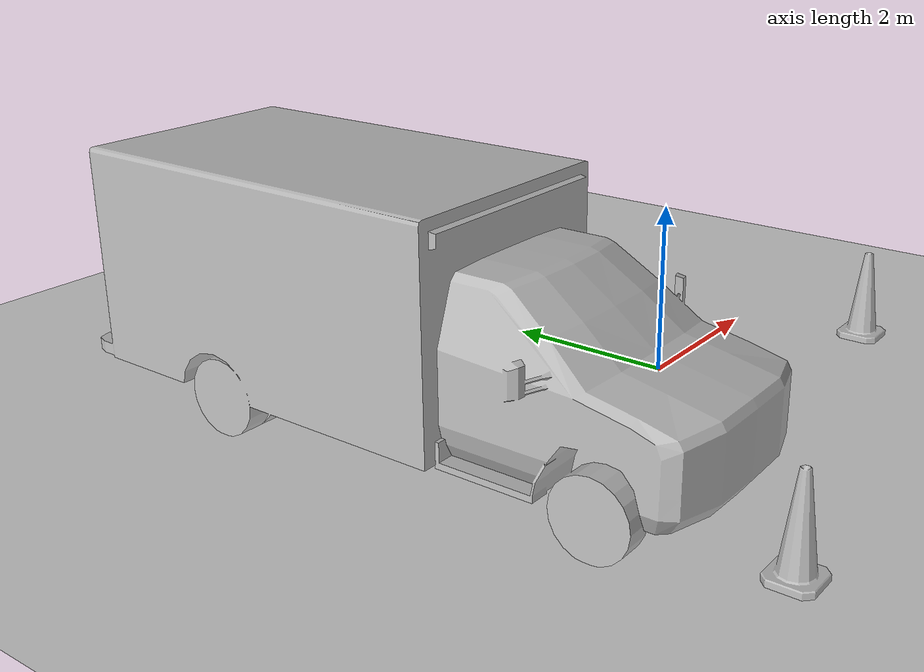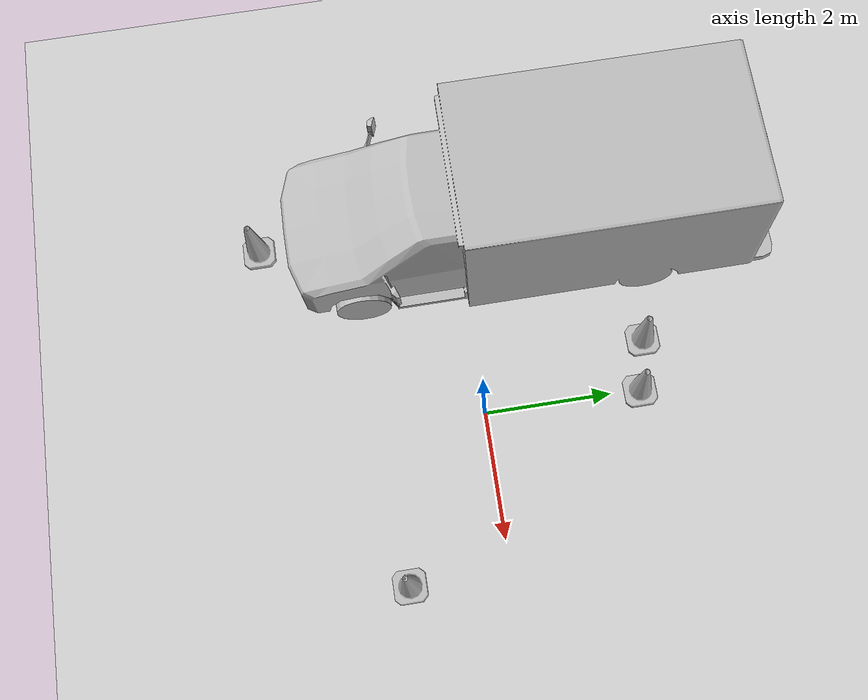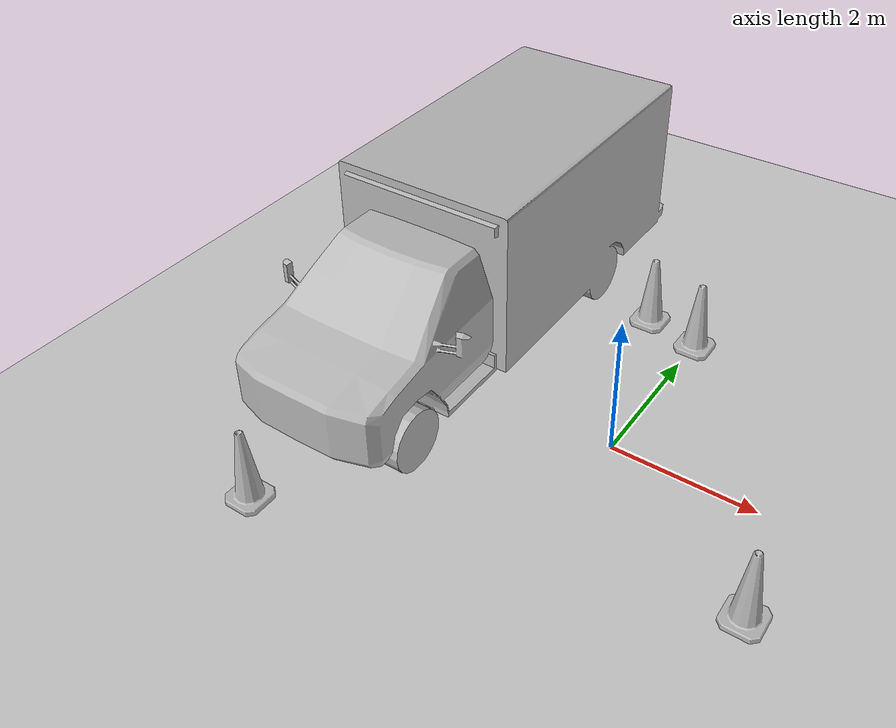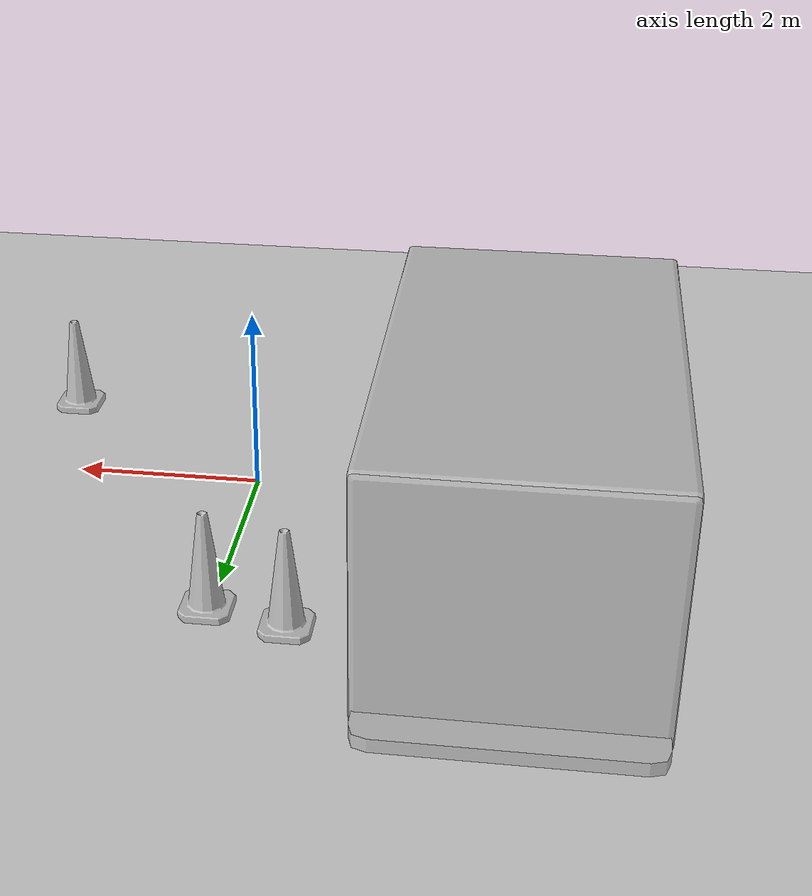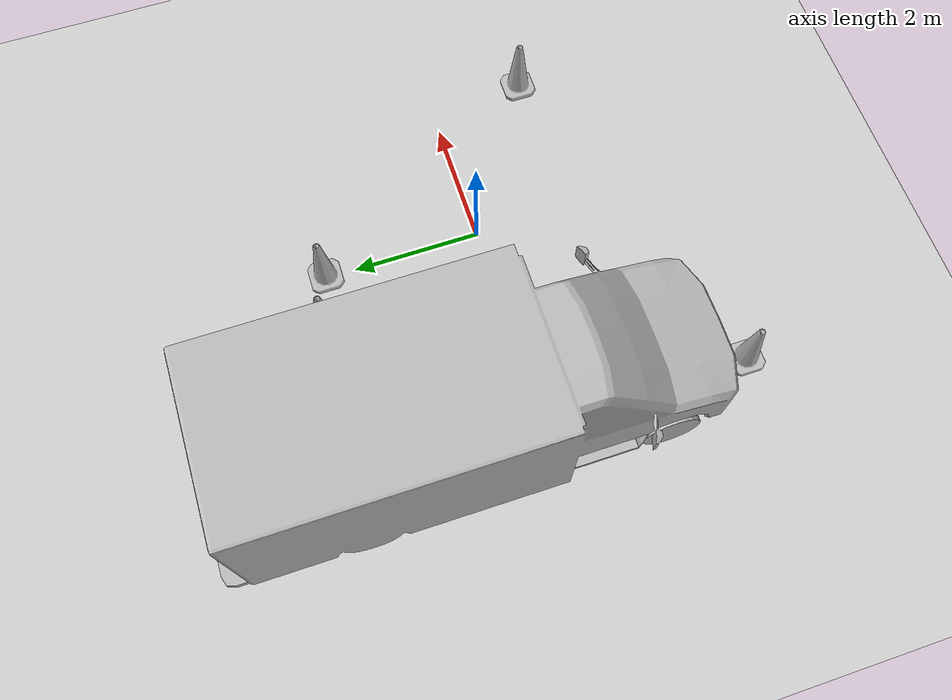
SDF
<sdf version="1.7">
 <world name="default">
  <light name="sun" type="directional">
   <pose>0 0 10 0 -0 0</pose>
   <diffuse>0.8 0.8 0.8 1</diffuse>
   <specular>0.2 0.2 0.2 1</specular>
   <attenuation>
    <range>1000</range>
    <constant>0.9</constant>
    <linear>0.01</linear>
    <quadratic>0.001</quadratic>
   </attenuation>
   <direction>-0.5 0.1 -0.9</direction>
   <spot><inner_angle>0</inner_angle><outer_angle>0</outer_angle><falloff>0</falloff></spot>
  </light>
  <model name="ground_plane">
   <static>1</static>
   <link name="link">
    <collision name="collision">
     <geometry><plane><normal>0 0 1</normal><size>100 100</size></plane></geometry>
     <surface>
      <contact><collide_bitmask>65535</collide_bitmask></contact>
      <friction><ode><mu>100</mu><mu2>50</mu2></ode></friction>
     </surface>
    </collision>
    <visual name="visual">
     <cast_shadows>0</cast_shadows>
     <geometry><plane><normal>0 0 1</normal><size>100 100</size></plane></geometry>
     <material>
      <script><uri>file://media/materials/scripts/gazebo.material</uri><name>Gazebo/Grey</name></script>
     </material>
    </visual>
   </link>
  </model>
  <gravity>0 0 -9.8</gravity>
  <magnetic_field>6e-06 2.3e-05 -4.2e-05</magnetic_field>
  <atmosphere type="adiabatic"/>
  <physics type="ode">
   <max_step_size>0.001</max_step_size>
   <real_time_factor>1</real_time_factor>
   <real_time_update_rate>1000</real_time_update_rate>
  </physics>
  <scene><ambient>0.4 0.4 0.4 1</ambient><background>0.7 0.7 0.7 1</background><shadows>1</shadows></scene>
  <spherical_coordinates>
   <surface_model>EARTH_WGS84</surface_model>
   <latitude_deg>0</latitude_deg>
   <longitude_deg>0</longitude_deg>
   <elevation>0</elevation>
   <heading_deg>0</heading_deg>
  </spherical_coordinates>
  <model name="ambulance">
   <static>1</static>
   <link name="link">
    <collision name="collision">
     <geometry>
      <mesh><scale>0.0254 0.0254 0.0254</scale><uri>model://ambulance/meshes/ambulance.obj</uri></mesh>
     </geometry>
    </collision>
    <visual name="visual">
     <geometry>
      <mesh><scale>0.0254 0.0254 0.0254</scale><uri>model://ambulance/meshes/ambulance.obj</uri></mesh>
     </geometry>
    </visual>
   </link>
   <pose>-2.96052 1.22405 0 0 -0 0</pose>
  </model>
  <model name="Construction Cone">
   <link name="link">
    <collision name="collision">
     <geometry>
      <mesh><scale>10 10 10</scale><uri>model://construction_cone/meshes/construction_cone.dae</uri></mesh>
     </geometry>
    </collision>
    <visual name="visual">
     <geometry>
      <mesh><scale>10 10 10</scale><uri>model://construction_cone/meshes/construction_cone.dae</uri></mesh>
     </geometry>
    </visual>
    <inertial>
     <inertia><ixx>1</ixx><ixy>0</ixy><ixz>0</ixz><iyy>1</iyy><iyz>0</iyz><izz>1</izz></inertia>
     <mass>1</mass>
    </inertial>
   </link>
   <pose>-0.784139 2.66691 -0 0 -1e-06 0</pose>
  </model>
  <model name="Construction Cone_0">
   <link name="link">
    <collision name="collision">
     <geometry>
      <mesh><scale>10 10 10</scale><uri>model://construction_cone/meshes/construction_cone.dae</uri></mesh>
     </geometry>
    </collision>
    <visual name="visual">
     <geometry>
      <mesh><scale>10 10 10</scale><uri>model://construction_cone/meshes/construction_cone.dae</uri></mesh>
     </geometry>
    </visual>
    <inertial>
     <inertia><ixx>1</ixx><ixy>0</ixy><ixz>0</ixz><iyy>1</iyy><iyz>0</iyz><izz>1</izz></inertia>
     <mass>1</mass>
    </inertial>
   </link>
   <pose>0.03196 2.46463 -0 0 -1e-06 0</pose>
  </model>
  <model name="Construction Cone_1">
   <link name="link">
    <collision name="collision">
     <geometry>
      <mesh><scale>10 10 10</scale><uri>model://construction_cone/meshes/construction_cone.dae</uri></mesh>
     </geometry>
    </collision>
    <visual name="visual">
     <geometry>
      <mesh><scale>10 10 10</scale><uri>model://construction_cone/meshes/construction_cone.dae</uri></mesh>
     </geometry>
    </visual>
    <inertial>
     <inertia><ixx>1</ixx><ixy>0</ixy><ixz>0</ixz><iyy>1</iyy><iyz>0</iyz><izz>1</izz></inertia>
     <mass>1</mass>
    </inertial>
   </link>
   <pose>2.45476 -1.52589 -0 0 -0 0</pose>
  </model>
  <model name="Construction Cone_2">
   <link name="link">
    <collision name="collision">
     <geometry>
      <mesh><scale>10 10 10</scale><uri>model://construction_cone/meshes/construction_cone.dae</uri></mesh>
     </geometry>
    </collision>
    <visual name="visual">
     <geometry>
      <mesh><scale>10 10 10</scale><uri>model://construction_cone/meshes/construction_cone.dae</uri></mesh>
     </geometry>
    </visual>
    <inertial>
     <inertia><ixx>1</ixx><ixy>0</ixy><ixz>0</ixz><iyy>1</iyy><iyz>0</iyz><izz>1</izz></inertia>
     <mass>1</mass>
    </inertial>
   </link>
   <pose>-3.24031 -3.21312 -0 0 -1e-06 0</pose>
  </model>
 </world>
</sdf>
